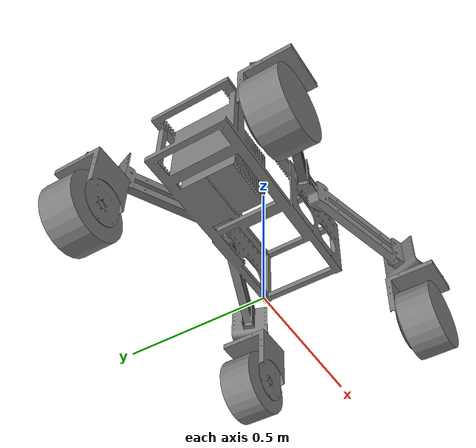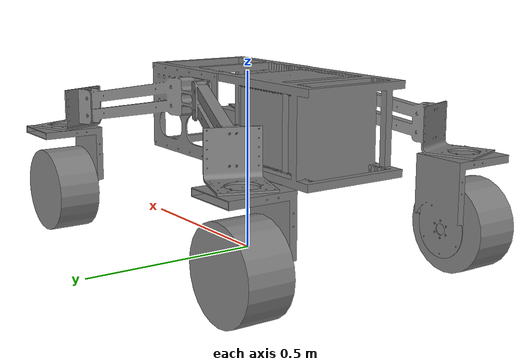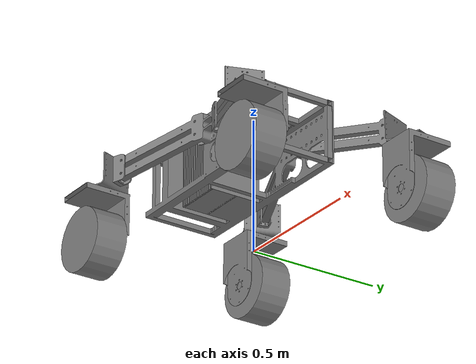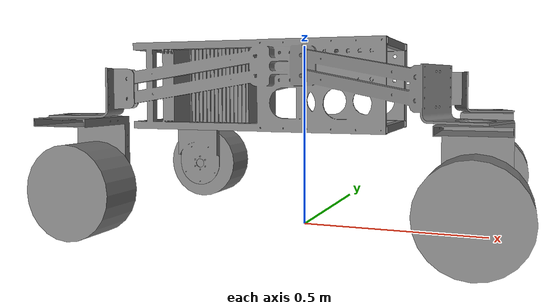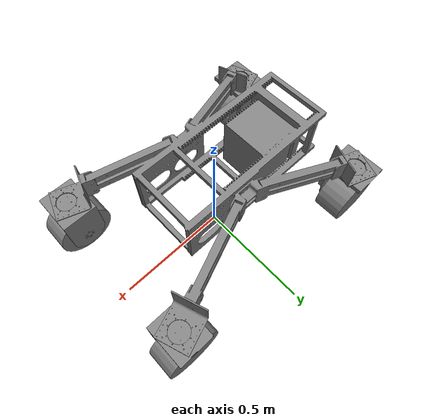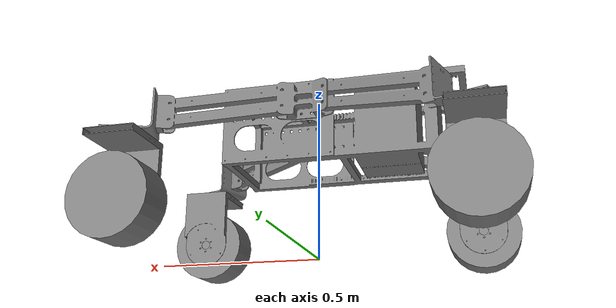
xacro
<?xml version="1.0" encoding="utf-8"?>
<robot xmlns:xacro="http://www.ros.org/wiki/xacro" name="proxima">

  <xacro:arg name="manipulator" default="none"/>
  <xacro:arg name="manipulator_only" default="false"/>

  <xacro:property name="manipulator" value="$(arg manipulator)"/>

  <xacro:property name="manipulator_mount_xyz" value="0.16 0 0.525"/>
  <xacro:property name="manipulator_mount_rpy" value="0 0 0"/>

  <xacro:unless value="$(arg manipulator_only)">
    <xacro:include filename="$(find proxima_description)/urdf/proxima_base.urdf.xacro"/>
  </xacro:unless>

  <xacro:if value="${manipulator == '6DOF'}">

    <xacro:include filename="$(find proxima_description)/urdf/manipulators/6DOF.urdf.xacro"/>

    <xacro:six_dof_arm_macro/>

    <xacro:unless value="$(arg manipulator_only)">
      <joint name="base_to_manipulator_joint" type="fixed">
        <parent link="base_link"/>
        <child link="root_link"/>
        <origin xyz="${manipulator_mount_xyz}" rpy="${manipulator_mount_rpy}"/>
      </joint>
    </xacro:unless>

    <xacro:if value="$(arg manipulator_only)">
      <link name="base_link"/>
      <joint name="base_to_manipulator_joint" type="fixed">
        <parent link="base_link"/>
        <child link="root_link"/>
        <origin xyz="0 0 0" rpy="0 0 0"/>
      </joint>
    </xacro:if>

  </xacro:if>

</robot>

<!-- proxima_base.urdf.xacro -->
<robot xmlns:xacro="http://www.ros.org/wiki/xacro" name="proxima_base">

  <!-- Mesh filenames -->
  <xacro:property name="mesh_platform" value="package://proxima_description/meshes/proxima/platform.stl"/>
  <xacro:property name="mesh_platform_collision" value="package://proxima_description/meshes/proxima/platform_collision.stl"/>

  <xacro:property name="mesh_fork" value="package://proxima_description/meshes/proxima/fork.stl"/>

  <!-- Materials -->

  <material name="proxima_color">
    <color rgba="0.5 0.5 0.5 1.0"/>
  </material>

  <!-- Base Link -->
  <link name="base_link" />

  <!-- Platform Link -->
  <link name="platform_link">
    <visual>
      <origin xyz="0 0 0" rpy="0 0 0"/>
      <geometry>
        <mesh filename="${mesh_platform}" scale="1 1 1"/>
      </geometry>
      <material name="proxima_color"/>
    </visual>

    <collision>
      <origin xyz="0 0 0" rpy="0 0 0"/>
      <geometry>
        <mesh filename="${mesh_platform_collision}" scale="1 1 1"/>
      </geometry>
    </collision>
  </link>

  <joint name="base_to_platform_joint" type="fixed">
    <parent link="base_link"/>
    <child link="platform_link"/>
    <origin xyz="0 0 0.27" rpy="0 0 0"/>
  </joint>

  <xacro:macro name="wheel" params="prefix:=wheel xyz rpy mirror:=false">
    <link name="${prefix}_fork_link">
      <visual>

        <xacro:if value="${mirror}">
          <origin xyz="0 0 0" rpy="0 0 ${pi}"/>
        </xacro:if>
        <xacro:unless value="${mirror}">
          <origin xyz="0 0 0" rpy="0 0 0"/>
        </xacro:unless>

        <geometry>
          <mesh filename="${mesh_fork}" scale="1 1 1"/>
        </geometry>
        <material name="proxima_color"/>
      </visual>

      <collision>
        <origin xyz="0 0 0" rpy="0 0 0"/>
        <geometry>
          <mesh filename="${mesh_fork}" scale="1 1 1"/>
        </geometry>
      </collision>
    </link>

    <link name="${prefix}_wheel_link">
      <visual>
        <origin xyz="0 0 0" rpy="0 0 0"/>
        <geometry>
          <cylinder radius="0.12" length="0.12"/>
        </geometry>
        <material name="proxima_color"/>
      </visual>

      <collision>
        <origin xyz="0 0 0" rpy="0 0 0"/>
        <geometry>
          <cylinder radius="0.12" length="0.12"/>
        </geometry>
      </collision>
    </link>

    <joint name="${prefix}_swerve_joint" type="revolute">
      <parent link="platform_link"/>
      <child link="${prefix}_fork_link"/>
      <origin xyz="${xyz}" rpy="${rpy}"/>
      <axis xyz="0 0 1"/>
      <limit effort="100" velocity="10" lower="${-pi}" upper="${pi}"/>
    </joint>

    <joint name="${prefix}_wheel_joint" type="continuous">
      <parent link="${prefix}_fork_link"/>
      <child link="${prefix}_wheel_link"/>
      <origin xyz="0 0 -0.175" rpy="-${pi/2} 0 0"/>
      <axis xyz="0 0 1"/>
    </joint>

  </xacro:macro>

  <xacro:wheel prefix="front_right" xyz="0.48 -0.345 0.03" rpy="0 0 0" mirror="true"/>
  <xacro:wheel prefix="front_left" xyz="0.48 0.345 0.03" rpy="0 0 0" mirror="false"/>
  <xacro:wheel prefix="back_right" xyz="-0.48 -0.345 0.03" rpy="0 0 0" mirror="true"/>
  <xacro:wheel prefix="back_left" xyz="-0.48 0.345 0.03" rpy="0 0 0" mirror="false"/>

</robot>
